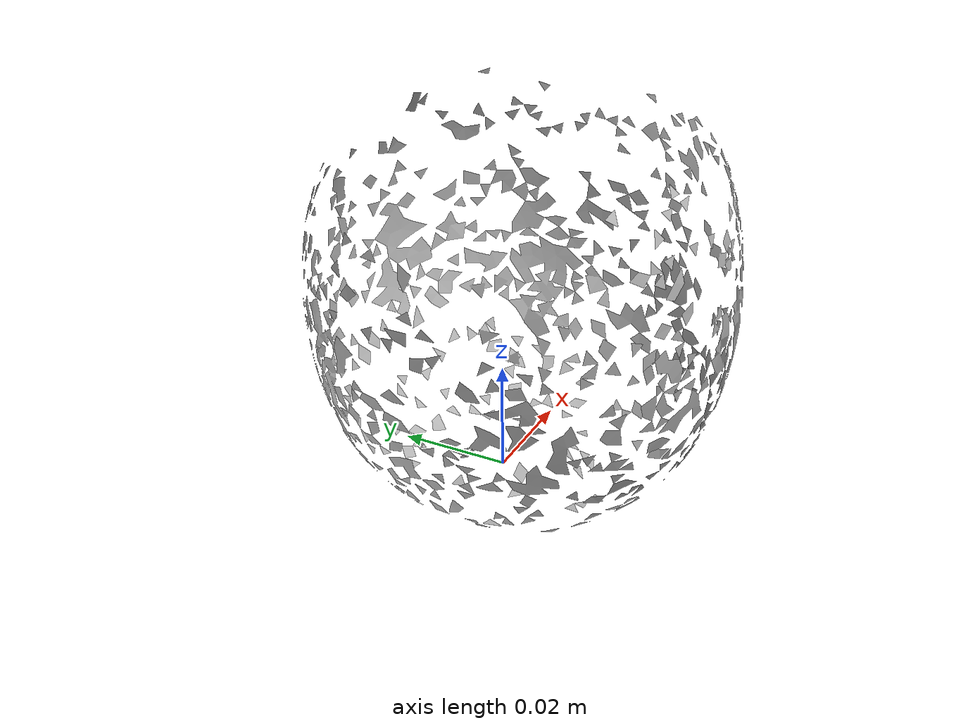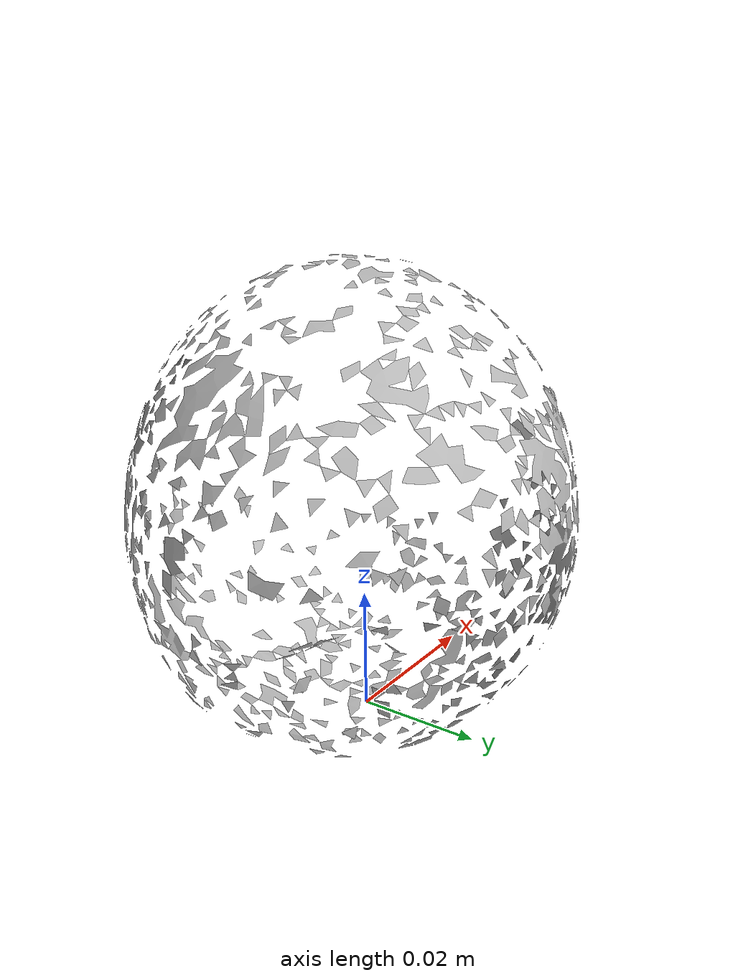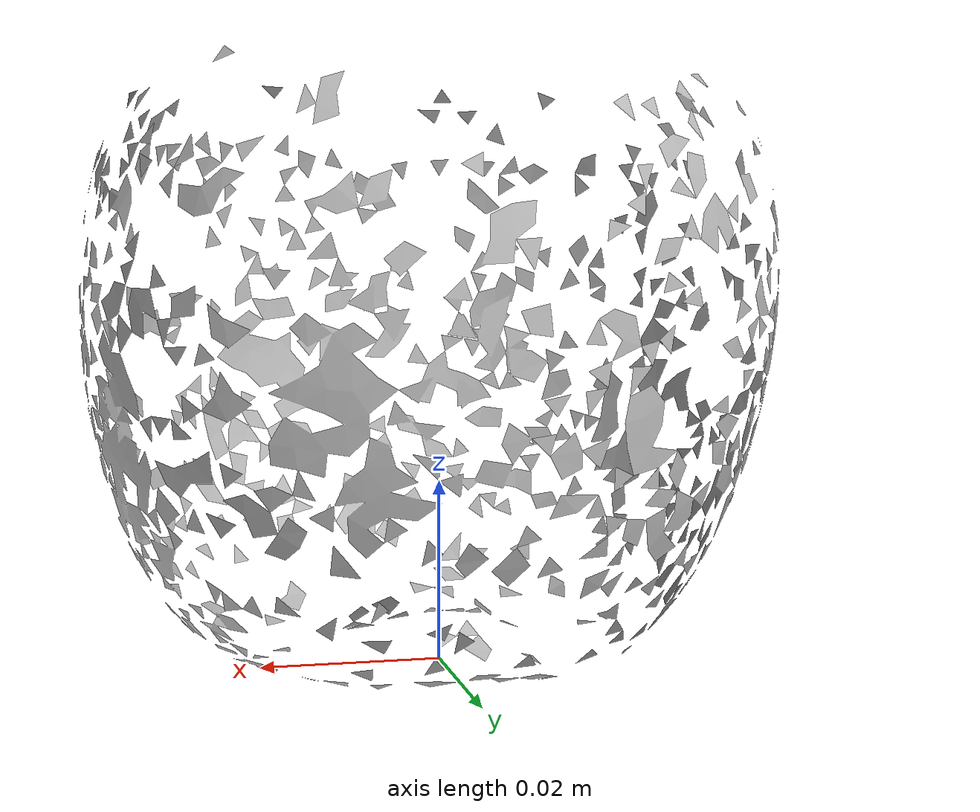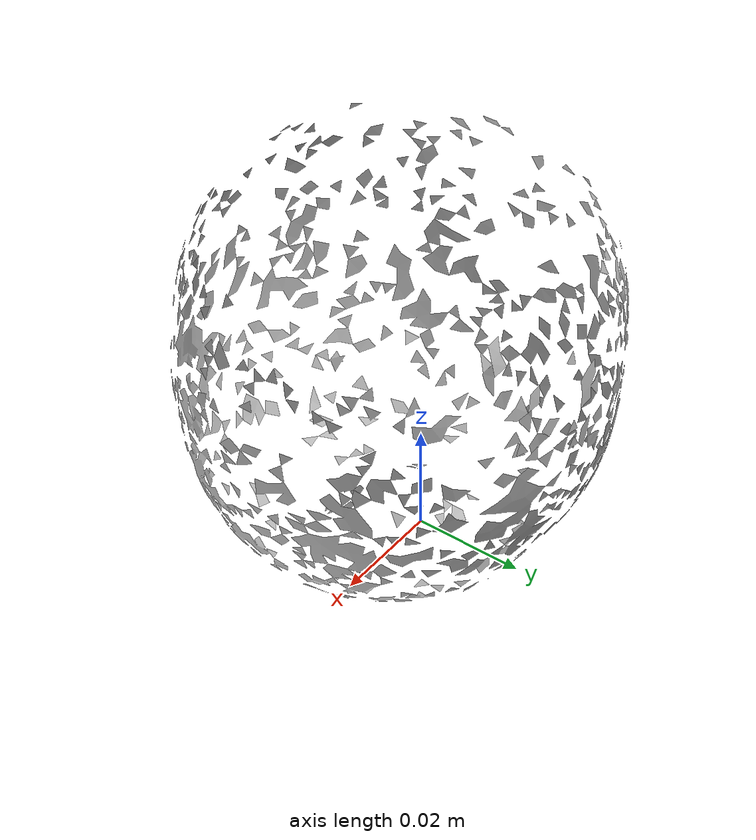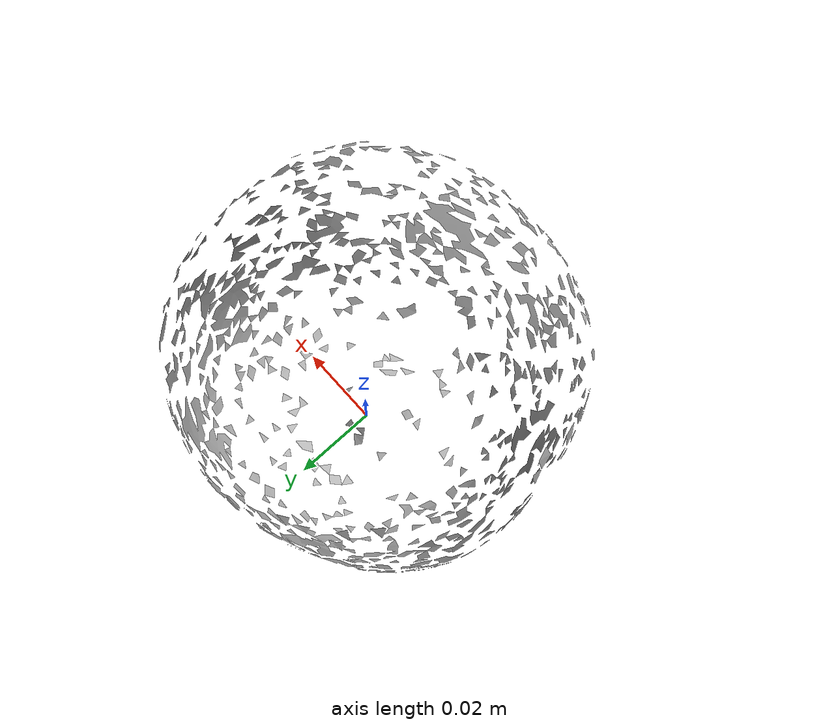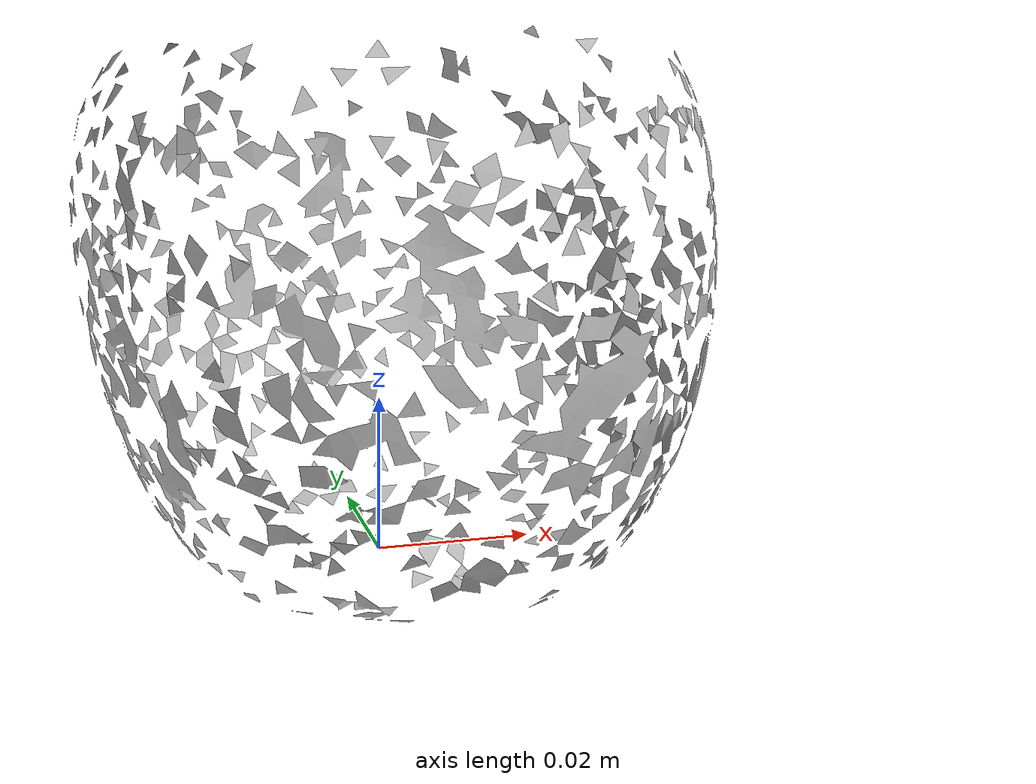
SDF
<?xml version="1.0" ?>
<sdf version="1.4">
  <model name='ycb_013_apple'>
    <link name='body'>
      <inertial>
        <mass>0.068</mass>
        <pose>0.00131058016449 -0.00386124266925 0.0363367326688 0 0 0</pose>
        <inertia>
          <ixx>4.1563768131e-05</ixx>
          <ixy>6.80461992324e-08</ixy>
          <ixz>1.15809005851e-07</ixz>
          <iyy>4.22411438136e-05</iyy>
          <iyz>-1.43268977382e-07</iyz>
          <izz>4.20557651075e-05</izz>
        </inertia>
      </inertial>
      <visual name='ycb_013_apple_visual'>
        <pose>0 0 0 0 0 0</pose>
        <geometry>
          <mesh>
            <uri>model://ycb_013_apple/meshes/textured.dae</uri>
          </mesh>
        </geometry>
      </visual>
      <collision name='ycb_013_apple_collision'>
        <pose>0 0 0 0 0 0</pose>
        <geometry>
          <mesh>
            <uri>model://ycb_013_apple/meshes/nontextured.stl</uri>
          </mesh>
        </geometry>
        <max_contacts>10</max_contacts>
      </collision>
    </link>
  </model>
</sdf>
